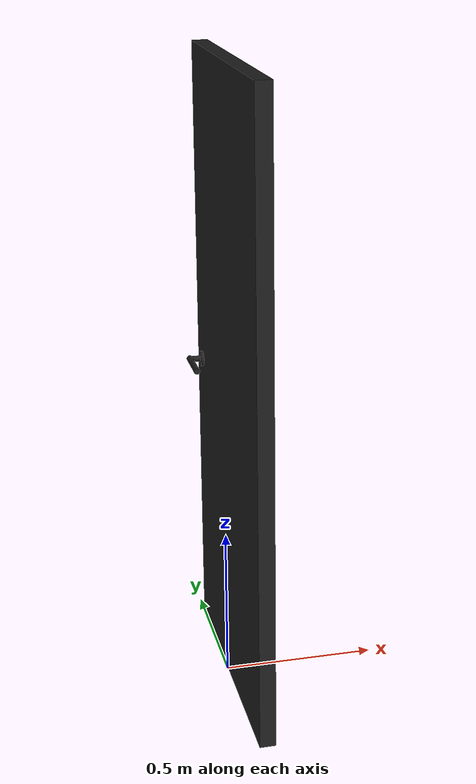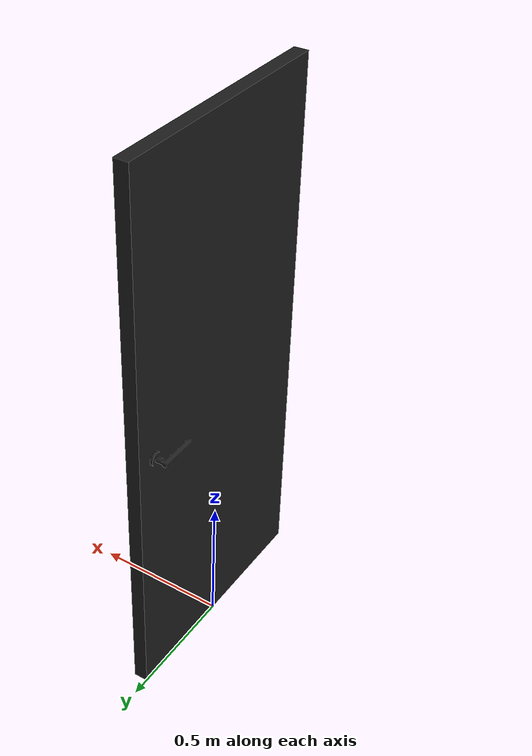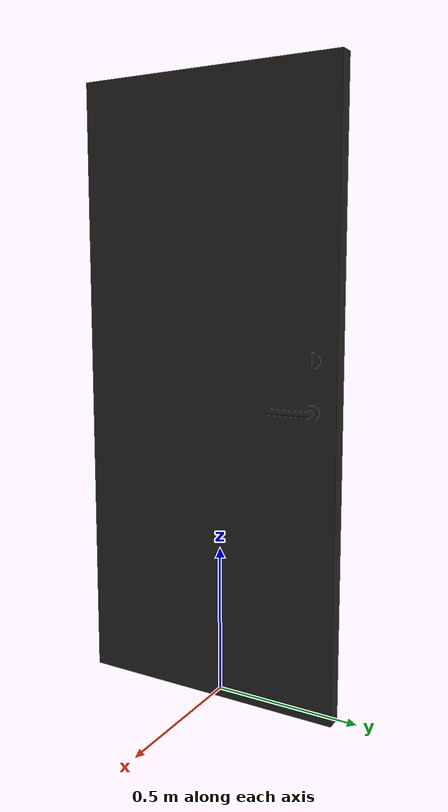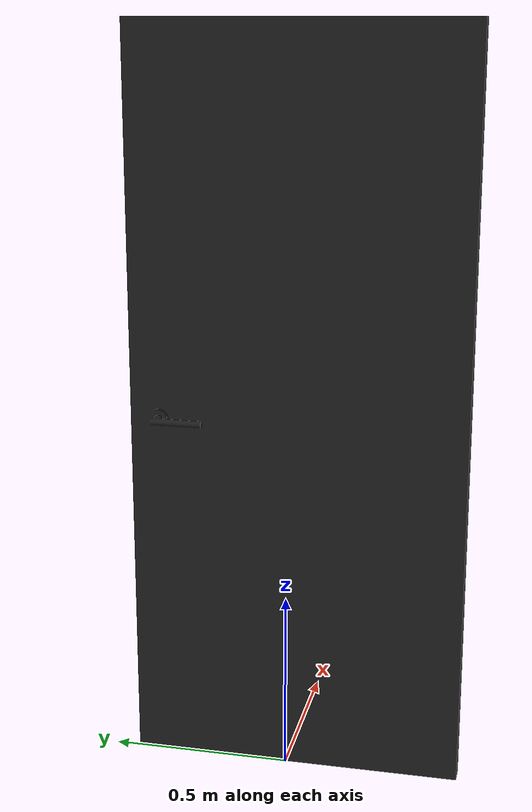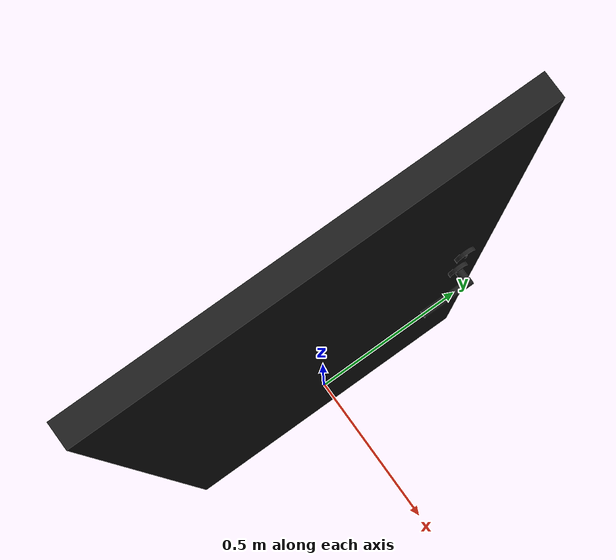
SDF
<?xml version="1.0"?>
<sdf version='1.6'>
  <model name='Door'>

    <link name='hinge'>
      <pose frame=''>0 -0.43 0 0 -0 0</pose>
      <inertial>
        <pose>-0.00057 0 0 0 -0 0</pose>
        <mass>3</mass>
        <inertia>
          <ixx>11.685</ixx>
          <ixy>7.223e-05</ixy>
          <ixz>0.00010293</ixz>
          <iyy>14.036</iyy>
          <iyz>-2.5678e-05</iyz>
          <izz>2.3663</izz>
        </inertia>
      </inertial>
      <velocity_decay>
        <linear>0</linear>
        <angular>0</angular>
      </velocity_decay>
    </link>
    <link name='door'>
      <pose frame=''>0.00057 -0.026006 0 0 -0 1.5708</pose>
      <inertial>
        <pose frame=''>0.00057 -0.026006 0 0 -0 1.5708</pose>
        <mass>33.399</mass>
        <inertia>
          <ixx>11.685</ixx>
          <ixy>7.223e-05</ixy>
          <ixz>0.00010293</ixz>
          <iyy>14.036</iyy>
          <iyz>-2.5678e-05</iyz>
          <izz>2.3663</izz>
        </inertia>
      </inertial>

      <collision name='door_collision'>
        <pose frame=''>0 0 0 1.5708 -0 0</pose>
        <geometry>
          <mesh>
            <scale>1 1 1</scale>
            <uri>model://Door/meshes/Door_in.dae</uri>
          </mesh>
        </geometry>
      </collision>
      <visual name='door_visual'>
        <pose frame=''>0 0 0 1.5708 -0 0</pose>
        <geometry>
          <mesh>
            <scale>1 1 1</scale>
            <uri>model://Door/meshes/Door_in.dae</uri>
          </mesh>
        </geometry>
      </visual>
      <gravity>1</gravity>
      <velocity_decay>
        <linear>0</linear>
        <angular>0</angular>
      </velocity_decay>
      <self_collide>0</self_collide>
    </link>

    <joint name='door_hinge' type='revolute'>
      <parent>hinge</parent>
      <child>door</child>
      <pose frame=''>-0.43 0 0 0 -0 0</pose>
      <axis>
        <xyz>0 0 1</xyz>
        <limit>
          <lower>0</lower>
          <upper>1.57</upper>
          <effort>0</effort>
          <velocity>10</velocity>
        </limit>
        <dynamics/>
      </axis>
    </joint>

    <joint name='floor_link' type='revolute'>
      <child>hinge</child>
      <parent>world</parent>
      <axis>
        <xyz>0 0 1</xyz>
        <limit>
          <lower>0</lower>
          <upper>0</upper>
          <effort>0</effort>
          <velocity>0</velocity>
        </limit>
        <dynamics/>
      </axis>
    </joint>

  <plugin name="door_plugin" filename="libdoor_plugin.so">
    <door_type>flip</door_type>
    <model_domain_space>door_</model_domain_space>
    <door_direction>counter_clockwise</door_direction>
  </plugin>

  </model>
</sdf>
